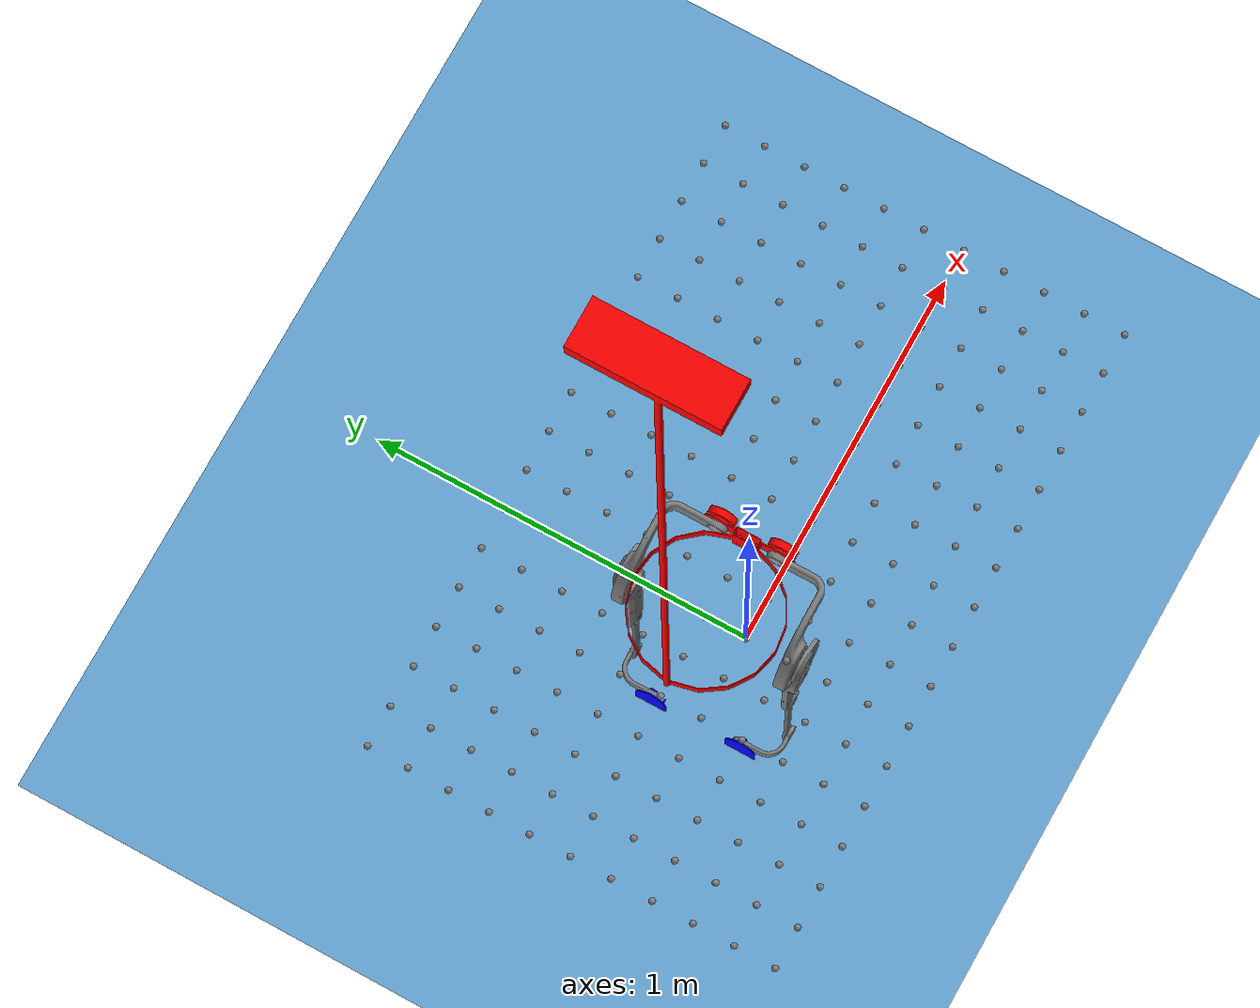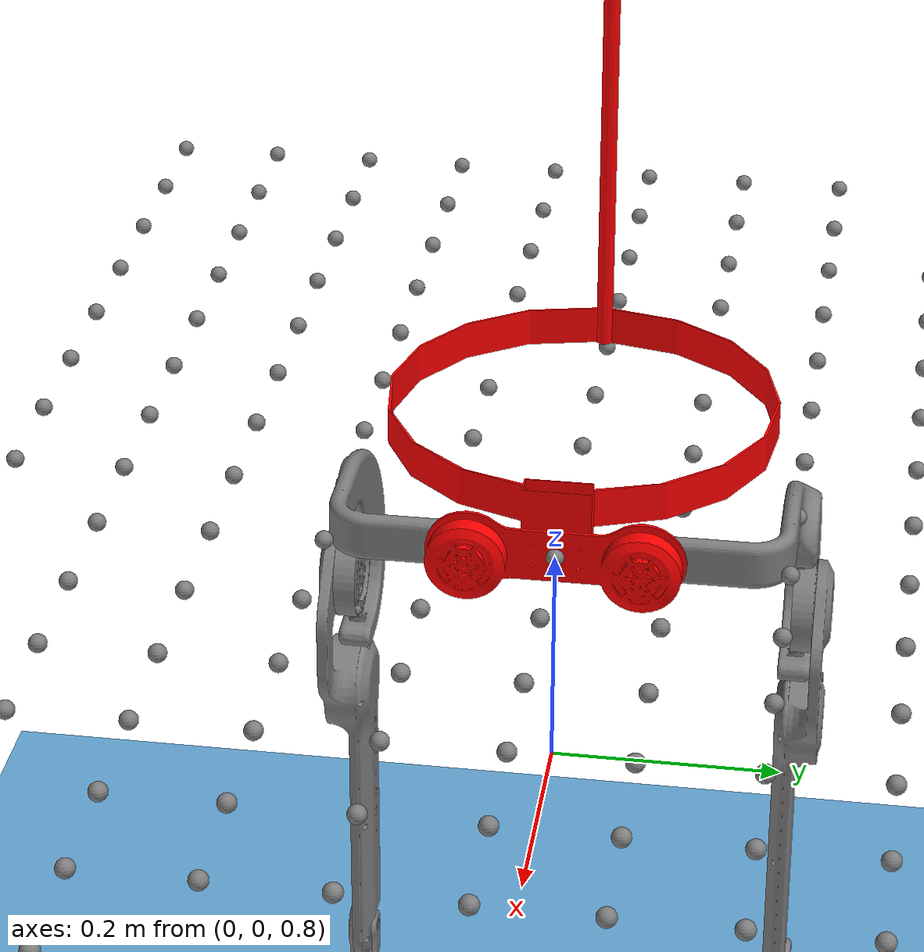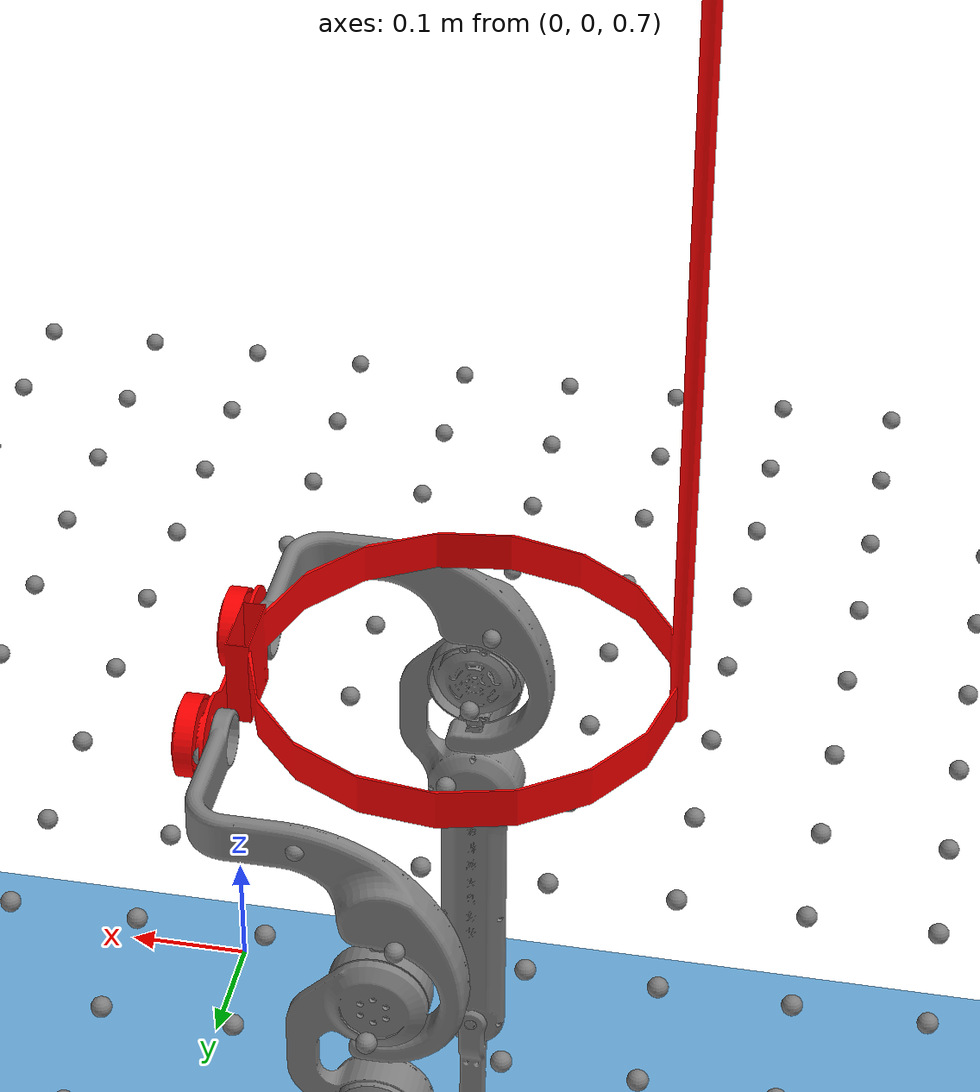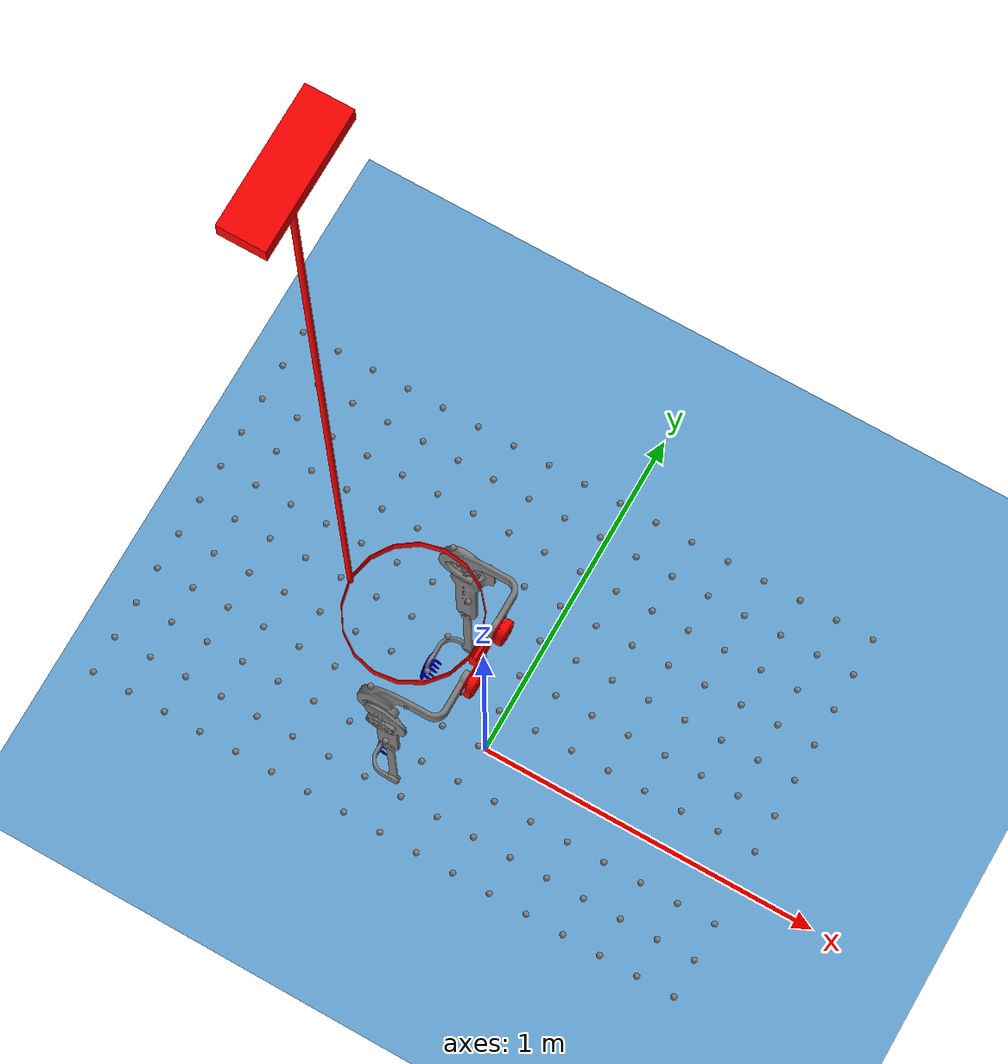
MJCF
<mujoco model="a2">

  <!-- ========== Compiler & Options ========== -->
  <compiler angle="radian" meshdir="../meshes"/>

  <option timestep="0.005" gravity="0 0 -9.81">
  </option>

  <default>

    <joint damping="0.1" armature="0.000"/>

    <default class="gemo_visual">  <!-- 只显示,不参与碰撞 -->
      <geom contype="0" conaffinity="0"/>
    </default>

    <default class="gemo_collision">  <!-- 只参与碰撞 -->
      <geom contype="0" conaffinity="1" group="3"/>
    </default>

  </default>

  <!-- ========== Assets (STL Meshes) ========== -->
  <asset>
    <mesh name="mesh_base"            file="base_link.STL"/>
    <mesh name="mesh_l_hip_roll"      file="left_hip_roll_link.STL"/>
    <mesh name="mesh_l_hip_yaw"       file="left_hip_yaw_link.STL"/>
    <mesh name="mesh_l_hip_pitch"     file="left_hip_pitch_link.STL"/>
    <mesh name="mesh_l_knee"          file="left_knee_link.STL"/>
    <mesh name="mesh_l_ankle_pitch"   file="left_ankle_pitch_link.STL"/>
    <mesh name="mesh_l_ankle_roll"    file="left_ankle_roll_link.STL"/>
    <mesh name="mesh_r_hip_roll"      file="right_hip_roll_link.STL"/>
    <mesh name="mesh_r_hip_yaw"       file="right_hip_yaw_link.STL"/>
    <mesh name="mesh_r_hip_pitch"     file="right_hip_pitch_link.STL"/>
    <mesh name="mesh_r_knee"          file="right_knee_link.STL"/>
    <mesh name="mesh_r_ankle_pitch"   file="right_ankle_pitch_link.STL"/>
    <mesh name="mesh_r_ankle_roll"    file="right_ankle_roll_link.STL"/>
  </asset>

  <asset>
      <texture name='texture_plane' type='2d' builtin='checker' rgb1='0.2745 0.5098 0.7059' rgb2='0.5294 0.8078 0.9804' width='128' height='128'/>
      <material name='material_plane' reflectance='0.0' texture='texture_plane' texrepeat='1 1' texuniform='true'/>
      <material name="gray" rgba="0.3 0.3 0.3 1"/>
      <material name="blue" rgba="0 0 1 1"/>
      <material name="red" rgba="1 0 0 1"/>
      <material name="green" rgba="0 1 0 1"/>
  </asset>

  <!-- ========== Worldbody ========== -->
  <worldbody>
    <geom name="floor" type="plane" conaffinity="2" size="100 100 .2" material="material_plane"/>
       <light directional="true" ambient=".3 .3 .3" pos="30 30 30" dir="0 -.5 -1"
                    diffuse=".5 .5 .5" specular=".5 .5 .5" />

    <body name="base_link" pos="0 0 1.0" euler="0 0 0">
      <freejoint name="base_free"/>
      <inertial pos="-0.14464 0 0.63562" mass="1.6082" fullinertia="1.6349 1.6777 0.06302 0 0.2309 0"/>
      <geom class="gemo_visual" type="mesh" mesh="mesh_base" rgba="1 0 0 1"/>
      <geom class="gemo_collision" type="box" size="0.2 0.15 0.75" pos="-0.2 0 0.75"/>

      <site name="ray_0_0" type="sphere" size="0.008" pos="-0.8 -0.5 0.0" zaxis="0 0 -1"/>
      <site name="ray_0_1" type="sphere" size="0.008" pos="-0.8 -0.4 0.0" zaxis="0 0 -1"/>
      <site name="ray_0_2" type="sphere" size="0.008" pos="-0.8 -0.3 0.0" zaxis="0 0 -1"/>
      <site name="ray_0_3" type="sphere" size="0.008" pos="-0.8 -0.2 0.0" zaxis="0 0 -1"/>
      <site name="ray_0_4" type="sphere" size="0.008" pos="-0.8 -0.1 0.0" zaxis="0 0 -1"/>
      <site name="ray_0_5" type="sphere" size="0.008" pos="-0.8 0.0 0.0" zaxis="0 0 -1"/>
      <site name="ray_0_6" type="sphere" size="0.008" pos="-0.8 0.1 0.0" zaxis="0 0 -1"/>
      <site name="ray_0_7" type="sphere" size="0.008" pos="-0.8 0.2 0.0" zaxis="0 0 -1"/>
      <site name="ray_0_8" type="sphere" size="0.008" pos="-0.8 0.3 0.0" zaxis="0 0 -1"/>
      <site name="ray_0_9" type="sphere" size="0.008" pos="-0.8 0.4 0.0" zaxis="0 0 -1"/>
      <site name="ray_0_10" type="sphere" size="0.008" pos="-0.8 0.5 0.0" zaxis="0 0 -1"/>
      <site name="ray_1_0" type="sphere" size="0.008" pos="-0.7 -0.5 0.0" zaxis="0 0 -1"/>
      <site name="ray_1_1" type="sphere" size="0.008" pos="-0.7 -0.4 0.0" zaxis="0 0 -1"/>
      <site name="ray_1_2" type="sphere" size="0.008" pos="-0.7 -0.3 0.0" zaxis="0 0 -1"/>
      <site name="ray_1_3" type="sphere" size="0.008" pos="-0.7 -0.2 0.0" zaxis="0 0 -1"/>
      <site name="ray_1_4" type="sphere" size="0.008" pos="-0.7 -0.1 0.0" zaxis="0 0 -1"/>
      <site name="ray_1_5" type="sphere" size="0.008" pos="-0.7 0.0 0.0" zaxis="0 0 -1"/>
      <site name="ray_1_6" type="sphere" size="0.008" pos="-0.7 0.1 0.0" zaxis="0 0 -1"/>
      <site name="ray_1_7" type="sphere" size="0.008" pos="-0.7 0.2 0.0" zaxis="0 0 -1"/>
      <site name="ray_1_8" type="sphere" size="0.008" pos="-0.7 0.3 0.0" zaxis="0 0 -1"/>
      <site name="ray_1_9" type="sphere" size="0.008" pos="-0.7 0.4 0.0" zaxis="0 0 -1"/>
      <site name="ray_1_10" type="sphere" size="0.008" pos="-0.7 0.5 0.0" zaxis="0 0 -1"/>
      <site name="ray_2_0" type="sphere" size="0.008" pos="-0.6 -0.5 0.0" zaxis="0 0 -1"/>
      <site name="ray_2_1" type="sphere" size="0.008" pos="-0.6 -0.4 0.0" zaxis="0 0 -1"/>
      <site name="ray_2_2" type="sphere" size="0.008" pos="-0.6 -0.3 0.0" zaxis="0 0 -1"/>
      <site name="ray_2_3" type="sphere" size="0.008" pos="-0.6 -0.2 0.0" zaxis="0 0 -1"/>
      <site name="ray_2_4" type="sphere" size="0.008" pos="-0.6 -0.1 0.0" zaxis="0 0 -1"/>
      <site name="ray_2_5" type="sphere" size="0.008" pos="-0.6 0.0 0.0" zaxis="0 0 -1"/>
      <site name="ray_2_6" type="sphere" size="0.008" pos="-0.6 0.1 0.0" zaxis="0 0 -1"/>
      <site name="ray_2_7" type="sphere" size="0.008" pos="-0.6 0.2 0.0" zaxis="0 0 -1"/>
      <site name="ray_2_8" type="sphere" size="0.008" pos="-0.6 0.3 0.0" zaxis="0 0 -1"/>
      <site name="ray_2_9" type="sphere" size="0.008" pos="-0.6 0.4 0.0" zaxis="0 0 -1"/>
      <site name="ray_2_10" type="sphere" size="0.008" pos="-0.6 0.5 0.0" zaxis="0 0 -1"/>
      <site name="ray_3_0" type="sphere" size="0.008" pos="-0.5 -0.5 0.0" zaxis="0 0 -1"/>
      <site name="ray_3_1" type="sphere" size="0.008" pos="-0.5 -0.4 0.0" zaxis="0 0 -1"/>
      <site name="ray_3_2" type="sphere" size="0.008" pos="-0.5 -0.3 0.0" zaxis="0 0 -1"/>
      <site name="ray_3_3" type="sphere" size="0.008" pos="-0.5 -0.2 0.0" zaxis="0 0 -1"/>
      <site name="ray_3_4" type="sphere" size="0.008" pos="-0.5 -0.1 0.0" zaxis="0 0 -1"/>
      <site name="ray_3_5" type="sphere" size="0.008" pos="-0.5 0.0 0.0" zaxis="0 0 -1"/>
      <site name="ray_3_6" type="sphere" size="0.008" pos="-0.5 0.1 0.0" zaxis="0 0 -1"/>
      <site name="ray_3_7" type="sphere" size="0.008" pos="-0.5 0.2 0.0" zaxis="0 0 -1"/>
      <site name="ray_3_8" type="sphere" size="0.008" pos="-0.5 0.3 0.0" zaxis="0 0 -1"/>
      <site name="ray_3_9" type="sphere" size="0.008" pos="-0.5 0.4 0.0" zaxis="0 0 -1"/>
      <site name="ray_3_10" type="sphere" size="0.008" pos="-0.5 0.5 0.0" zaxis="0 0 -1"/>
      <site name="ray_4_0" type="sphere" size="0.008" pos="-0.4 -0.5 0.0" zaxis="0 0 -1"/>
      <site name="ray_4_1" type="sphere" size="0.008" pos="-0.4 -0.4 0.0" zaxis="0 0 -1"/>
      <site name="ray_4_2" type="sphere" size="0.008" pos="-0.4 -0.3 0.0" zaxis="0 0 -1"/>
      <site name="ray_4_3" type="sphere" size="0.008" pos="-0.4 -0.2 0.0" zaxis="0 0 -1"/>
      <site name="ray_4_4" type="sphere" size="0.008" pos="-0.4 -0.1 0.0" zaxis="0 0 -1"/>
      <site name="ray_4_5" type="sphere" size="0.008" pos="-0.4 0.0 0.0" zaxis="0 0 -1"/>
      <site name="ray_4_6" type="sphere" size="0.008" pos="-0.4 0.1 0.0" zaxis="0 0 -1"/>
      <site name="ray_4_7" type="sphere" size="0.008" pos="-0.4 0.2 0.0" zaxis="0 0 -1"/>
      <site name="ray_4_8" type="sphere" size="0.008" pos="-0.4 0.3 0.0" zaxis="0 0 -1"/>
      <site name="ray_4_9" type="sphere" size="0.008" pos="-0.4 0.4 0.0" zaxis="0 0 -1"/>
      <site name="ray_4_10" type="sphere" size="0.008" pos="-0.4 0.5 0.0" zaxis="0 0 -1"/>
      <site name="ray_5_0" type="sphere" size="0.008" pos="-0.3 -0.5 0.0" zaxis="0 0 -1"/>
      <site name="ray_5_1" type="sphere" size="0.008" pos="-0.3 -0.4 0.0" zaxis="0 0 -1"/>
      <site name="ray_5_2" type="sphere" size="0.008" pos="-0.3 -0.3 0.0" zaxis="0 0 -1"/>
      <site name="ray_5_3" type="sphere" size="0.008" pos="-0.3 -0.2 0.0" zaxis="0 0 -1"/>
      <site name="ray_5_4" type="sphere" size="0.008" pos="-0.3 -0.1 0.0" zaxis="0 0 -1"/>
      <site name="ray_5_5" type="sphere" size="0.008" pos="-0.3 0.0 0.0" zaxis="0 0 -1"/>
      <site name="ray_5_6" type="sphere" size="0.008" pos="-0.3 0.1 0.0" zaxis="0 0 -1"/>
      <site name="ray_5_7" type="sphere" size="0.008" pos="-0.3 0.2 0.0" zaxis="0 0 -1"/>
      <site name="ray_5_8" type="sphere" size="0.008" pos="-0.3 0.3 0.0" zaxis="0 0 -1"/>
      <site name="ray_5_9" type="sphere" size="0.008" pos="-0.3 0.4 0.0" zaxis="0 0 -1"/>
      <site name="ray_5_10" type="sphere" size="0.008" pos="-0.3 0.5 0.0" zaxis="0 0 -1"/>
      <site name="ray_6_0" type="sphere" size="0.008" pos="-0.2 -0.5 0.0" zaxis="0 0 -1"/>
      <site name="ray_6_1" type="sphere" size="0.008" pos="-0.2 -0.4 0.0" zaxis="0 0 -1"/>
      <site name="ray_6_2" type="sphere" size="0.008" pos="-0.2 -0.3 0.0" zaxis="0 0 -1"/>
      <site name="ray_6_3" type="sphere" size="0.008" pos="-0.2 -0.2 0.0" zaxis="0 0 -1"/>
      <site name="ray_6_4" type="sphere" size="0.008" pos="-0.2 -0.1 0.0" zaxis="0 0 -1"/>
      <site name="ray_6_5" type="sphere" size="0.008" pos="-0.2 0.0 0.0" zaxis="0 0 -1"/>
      <site name="ray_6_6" type="sphere" size="0.008" pos="-0.2 0.1 0.0" zaxis="0 0 -1"/>
      <site name="ray_6_7" type="sphere" size="0.008" pos="-0.2 0.2 0.0" zaxis="0 0 -1"/>
      <site name="ray_6_8" type="sphere" size="0.008" pos="-0.2 0.3 0.0" zaxis="0 0 -1"/>
      <site name="ray_6_9" type="sphere" size="0.008" pos="-0.2 0.4 0.0" zaxis="0 0 -1"/>
      <site name="ray_6_10" type="sphere" size="0.008" pos="-0.2 0.5 0.0" zaxis="0 0 -1"/>
      <site name="ray_7_0" type="sphere" size="0.008" pos="-0.1 -0.5 0.0" zaxis="0 0 -1"/>
      <site name="ray_7_1" type="sphere" size="0.008" pos="-0.1 -0.4 0.0" zaxis="0 0 -1"/>
      <site name="ray_7_2" type="sphere" size="0.008" pos="-0.1 -0.3 0.0" zaxis="0 0 -1"/>
      <site name="ray_7_3" type="sphere" size="0.008" pos="-0.1 -0.2 0.0" zaxis="0 0 -1"/>
      <site name="ray_7_4" type="sphere" size="0.008" pos="-0.1 -0.1 0.0" zaxis="0 0 -1"/>
      <site name="ray_7_5" type="sphere" size="0.008" pos="-0.1 0.0 0.0" zaxis="0 0 -1"/>
      <site name="ray_7_6" type="sphere" size="0.008" pos="-0.1 0.1 0.0" zaxis="0 0 -1"/>
      <site name="ray_7_7" type="sphere" size="0.008" pos="-0.1 0.2 0.0" zaxis="0 0 -1"/>
      <site name="ray_7_8" type="sphere" size="0.008" pos="-0.1 0.3 0.0" zaxis="0 0 -1"/>
      <site name="ray_7_9" type="sphere" size="0.008" pos="-0.1 0.4 0.0" zaxis="0 0 -1"/>
      <site name="ray_7_10" type="sphere" size="0.008" pos="-0.1 0.5 0.0" zaxis="0 0 -1"/>
      <site name="ray_8_0" type="sphere" size="0.008" pos="0.0 -0.5 0.0" zaxis="0 0 -1"/>
      <site name="ray_8_1" type="sphere" size="0.008" pos="0.0 -0.4 0.0" zaxis="0 0 -1"/>
      <site name="ray_8_2" type="sphere" size="0.008" pos="0.0 -0.3 0.0" zaxis="0 0 -1"/>
      <site name="ray_8_3" type="sphere" size="0.008" pos="0.0 -0.2 0.0" zaxis="0 0 -1"/>
      <site name="ray_8_4" type="sphere" size="0.008" pos="0.0 -0.1 0.0" zaxis="0 0 -1"/>
      <site name="ray_8_5" type="sphere" size="0.008" pos="0.0 0.0 0.0" zaxis="0 0 -1"/>
      <site name="ray_8_6" type="sphere" size="0.008" pos="0.0 0.1 0.0" zaxis="0 0 -1"/>
      <site name="ray_8_7" type="sphere" size="0.008" pos="0.0 0.2 0.0" zaxis="0 0 -1"/>
      <site name="ray_8_8" type="sphere" size="0.008" pos="0.0 0.3 0.0" zaxis="0 0 -1"/>
      <site name="ray_8_9" type="sphere" size="0.008" pos="0.0 0.4 0.0" zaxis="0 0 -1"/>
      <site name="ray_8_10" type="sphere" size="0.008" pos="0.0 0.5 0.0" zaxis="0 0 -1"/>
      <site name="ray_9_0" type="sphere" size="0.008" pos="0.1 -0.5 0.0" zaxis="0 0 -1"/>
      <site name="ray_9_1" type="sphere" size="0.008" pos="0.1 -0.4 0.0" zaxis="0 0 -1"/>
      <site name="ray_9_2" type="sphere" size="0.008" pos="0.1 -0.3 0.0" zaxis="0 0 -1"/>
      <site name="ray_9_3" type="sphere" size="0.008" pos="0.1 -0.2 0.0" zaxis="0 0 -1"/>
      <site name="ray_9_4" type="sphere" size="0.008" pos="0.1 -0.1 0.0" zaxis="0 0 -1"/>
      <site name="ray_9_5" type="sphere" size="0.008" pos="0.1 0.0 0.0" zaxis="0 0 -1"/>
      <site name="ray_9_6" type="sphere" size="0.008" pos="0.1 0.1 0.0" zaxis="0 0 -1"/>
      <site name="ray_9_7" type="sphere" size="0.008" pos="0.1 0.2 0.0" zaxis="0 0 -1"/>
      <site name="ray_9_8" type="sphere" size="0.008" pos="0.1 0.3 0.0" zaxis="0 0 -1"/>
      <site name="ray_9_9" type="sphere" size="0.008" pos="0.1 0.4 0.0" zaxis="0 0 -1"/>
      <site name="ray_9_10" type="sphere" size="0.008" pos="0.1 0.5 0.0" zaxis="0 0 -1"/>
      <site name="ray_10_0" type="sphere" size="0.008" pos="0.2 -0.5 0.0" zaxis="0 0 -1"/>
      <site name="ray_10_1" type="sphere" size="0.008" pos="0.2 -0.4 0.0" zaxis="0 0 -1"/>
      <site name="ray_10_2" type="sphere" size="0.008" pos="0.2 -0.3 0.0" zaxis="0 0 -1"/>
      <site name="ray_10_3" type="sphere" size="0.008" pos="0.2 -0.2 0.0" zaxis="0 0 -1"/>
      <site name="ray_10_4" type="sphere" size="0.008" pos="0.2 -0.1 0.0" zaxis="0 0 -1"/>
      <site name="ray_10_5" type="sphere" size="0.008" pos="0.2 0.0 0.0" zaxis="0 0 -1"/>
      <site name="ray_10_6" type="sphere" size="0.008" pos="0.2 0.1 0.0" zaxis="0 0 -1"/>
      <site name="ray_10_7" type="sphere" size="0.008" pos="0.2 0.2 0.0" zaxis="0 0 -1"/>
      <site name="ray_10_8" type="sphere" size="0.008" pos="0.2 0.3 0.0" zaxis="0 0 -1"/>
      <site name="ray_10_9" type="sphere" size="0.008" pos="0.2 0.4 0.0" zaxis="0 0 -1"/>
      <site name="ray_10_10" type="sphere" size="0.008" pos="0.2 0.5 0.0" zaxis="0 0 -1"/>
      <site name="ray_11_0" type="sphere" size="0.008" pos="0.3 -0.5 0.0" zaxis="0 0 -1"/>
      <site name="ray_11_1" type="sphere" size="0.008" pos="0.3 -0.4 0.0" zaxis="0 0 -1"/>
      <site name="ray_11_2" type="sphere" size="0.008" pos="0.3 -0.3 0.0" zaxis="0 0 -1"/>
      <site name="ray_11_3" type="sphere" size="0.008" pos="0.3 -0.2 0.0" zaxis="0 0 -1"/>
      <site name="ray_11_4" type="sphere" size="0.008" pos="0.3 -0.1 0.0" zaxis="0 0 -1"/>
      <site name="ray_11_5" type="sphere" size="0.008" pos="0.3 0.0 0.0" zaxis="0 0 -1"/>
      <site name="ray_11_6" type="sphere" size="0.008" pos="0.3 0.1 0.0" zaxis="0 0 -1"/>
      <site name="ray_11_7" type="sphere" size="0.008" pos="0.3 0.2 0.0" zaxis="0 0 -1"/>
      <site name="ray_11_8" type="sphere" size="0.008" pos="0.3 0.3 0.0" zaxis="0 0 -1"/>
      <site name="ray_11_9" type="sphere" size="0.008" pos="0.3 0.4 0.0" zaxis="0 0 -1"/>
      <site name="ray_11_10" type="sphere" size="0.008" pos="0.3 0.5 0.0" zaxis="0 0 -1"/>
      <site name="ray_12_0" type="sphere" size="0.008" pos="0.4 -0.5 0.0" zaxis="0 0 -1"/>
      <site name="ray_12_1" type="sphere" size="0.008" pos="0.4 -0.4 0.0" zaxis="0 0 -1"/>
      <site name="ray_12_2" type="sphere" size="0.008" pos="0.4 -0.3 0.0" zaxis="0 0 -1"/>
      <site name="ray_12_3" type="sphere" size="0.008" pos="0.4 -0.2 0.0" zaxis="0 0 -1"/>
      <site name="ray_12_4" type="sphere" size="0.008" pos="0.4 -0.1 0.0" zaxis="0 0 -1"/>
      <site name="ray_12_5" type="sphere" size="0.008" pos="0.4 0.0 0.0" zaxis="0 0 -1"/>
      <site name="ray_12_6" type="sphere" size="0.008" pos="0.4 0.1 0.0" zaxis="0 0 -1"/>
      <site name="ray_12_7" type="sphere" size="0.008" pos="0.4 0.2 0.0" zaxis="0 0 -1"/>
      <site name="ray_12_8" type="sphere" size="0.008" pos="0.4 0.3 0.0" zaxis="0 0 -1"/>
      <site name="ray_12_9" type="sphere" size="0.008" pos="0.4 0.4 0.0" zaxis="0 0 -1"/>
      <site name="ray_12_10" type="sphere" size="0.008" pos="0.4 0.5 0.0" zaxis="0 0 -1"/>
      <site name="ray_13_0" type="sphere" size="0.008" pos="0.5 -0.5 0.0" zaxis="0 0 -1"/>
      <site name="ray_13_1" type="sphere" size="0.008" pos="0.5 -0.4 0.0" zaxis="0 0 -1"/>
      <site name="ray_13_2" type="sphere" size="0.008" pos="0.5 -0.3 0.0" zaxis="0 0 -1"/>
      <site name="ray_13_3" type="sphere" size="0.008" pos="0.5 -0.2 0.0" zaxis="0 0 -1"/>
      <site name="ray_13_4" type="sphere" size="0.008" pos="0.5 -0.1 0.0" zaxis="0 0 -1"/>
      <site name="ray_13_5" type="sphere" size="0.008" pos="0.5 0.0 0.0" zaxis="0 0 -1"/>
      <site name="ray_13_6" type="sphere" size="0.008" pos="0.5 0.1 0.0" zaxis="0 0 -1"/>
      <site name="ray_13_7" type="sphere" size="0.008" pos="0.5 0.2 0.0" zaxis="0 0 -1"/>
      <site name="ray_13_8" type="sphere" size="0.008" pos="0.5 0.3 0.0" zaxis="0 0 -1"/>
      <site name="ray_13_9" type="sphere" size="0.008" pos="0.5 0.4 0.0" zaxis="0 0 -1"/>
      <site name="ray_13_10" type="sphere" size="0.008" pos="0.5 0.5 0.0" zaxis="0 0 -1"/>
      <site name="ray_14_0" type="sphere" size="0.008" pos="0.6 -0.5 0.0" zaxis="0 0 -1"/>
      <site name="ray_14_1" type="sphere" size="0.008" pos="0.6 -0.4 0.0" zaxis="0 0 -1"/>
      <site name="ray_14_2" type="sphere" size="0.008" pos="0.6 -0.3 0.0" zaxis="0 0 -1"/>
      <site name="ray_14_3" type="sphere" size="0.008" pos="0.6 -0.2 0.0" zaxis="0 0 -1"/>
      <site name="ray_14_4" type="sphere" size="0.008" pos="0.6 -0.1 0.0" zaxis="0 0 -1"/>
      <site name="ray_14_5" type="sphere" size="0.008" pos="0.6 0.0 0.0" zaxis="0 0 -1"/>
      <site name="ray_14_6" type="sphere" size="0.008" pos="0.6 0.1 0.0" zaxis="0 0 -1"/>
      <site name="ray_14_7" type="sphere" size="0.008" pos="0.6 0.2 0.0" zaxis="0 0 -1"/>
      <site name="ray_14_8" type="sphere" size="0.008" pos="0.6 0.3 0.0" zaxis="0 0 -1"/>
      <site name="ray_14_9" type="sphere" size="0.008" pos="0.6 0.4 0.0" zaxis="0 0 -1"/>
      <site name="ray_14_10" type="sphere" size="0.008" pos="0.6 0.5 0.0" zaxis="0 0 -1"/>
      <site name="ray_15_0" type="sphere" size="0.008" pos="0.7 -0.5 0.0" zaxis="0 0 -1"/>
      <site name="ray_15_1" type="sphere" size="0.008" pos="0.7 -0.4 0.0" zaxis="0 0 -1"/>
      <site name="ray_15_2" type="sphere" size="0.008" pos="0.7 -0.3 0.0" zaxis="0 0 -1"/>
      <site name="ray_15_3" type="sphere" size="0.008" pos="0.7 -0.2 0.0" zaxis="0 0 -1"/>
      <site name="ray_15_4" type="sphere" size="0.008" pos="0.7 -0.1 0.0" zaxis="0 0 -1"/>
      <site name="ray_15_5" type="sphere" size="0.008" pos="0.7 0.0 0.0" zaxis="0 0 -1"/>
      <site name="ray_15_6" type="sphere" size="0.008" pos="0.7 0.1 0.0" zaxis="0 0 -1"/>
      <site name="ray_15_7" type="sphere" size="0.008" pos="0.7 0.2 0.0" zaxis="0 0 -1"/>
      <site name="ray_15_8" type="sphere" size="0.008" pos="0.7 0.3 0.0" zaxis="0 0 -1"/>
      <site name="ray_15_9" type="sphere" size="0.008" pos="0.7 0.4 0.0" zaxis="0 0 -1"/>
      <site name="ray_15_10" type="sphere" size="0.008" pos="0.7 0.5 0.0" zaxis="0 0 -1"/>
      <site name="ray_16_0" type="sphere" size="0.008" pos="0.8 -0.5 0.0" zaxis="0 0 -1"/>
      <site name="ray_16_1" type="sphere" size="0.008" pos="0.8 -0.4 0.0" zaxis="0 0 -1"/>
      <site name="ray_16_2" type="sphere" size="0.008" pos="0.8 -0.3 0.0" zaxis="0 0 -1"/>
      <site name="ray_16_3" type="sphere" size="0.008" pos="0.8 -0.2 0.0" zaxis="0 0 -1"/>
      <site name="ray_16_4" type="sphere" size="0.008" pos="0.8 -0.1 0.0" zaxis="0 0 -1"/>
      <site name="ray_16_5" type="sphere" size="0.008" pos="0.8 0.0 0.0" zaxis="0 0 -1"/>
      <site name="ray_16_6" type="sphere" size="0.008" pos="0.8 0.1 0.0" zaxis="0 0 -1"/>
      <site name="ray_16_7" type="sphere" size="0.008" pos="0.8 0.2 0.0" zaxis="0 0 -1"/>
      <site name="ray_16_8" type="sphere" size="0.008" pos="0.8 0.3 0.0" zaxis="0 0 -1"/>
      <site name="ray_16_9" type="sphere" size="0.008" pos="0.8 0.4 0.0" zaxis="0 0 -1"/>
      <site name="ray_16_10" type="sphere" size="0.008" pos="0.8 0.5 0.0" zaxis="0 0 -1"/>

      <body name="left_hip_roll_link" pos="-0.001 0.075 0" euler="0 0 0">
        <inertial pos="-0.11964 0.10244 -0.05598" mass="0.34283" fullinertia="0.00223 0.00379 0.00287 0.00091 -0.00132 0.00049"/>
        <joint name="left_hip_roll_joint" axis="1 0 0" range="-0.52 2.97"/>
        <geom class="gemo_visual" type="mesh" mesh="mesh_l_hip_roll"/>

        <body name="left_hip_yaw_link" pos="-0.166 0.128 -0.0835" euler="0 0 0">
          <inertial pos="-1E-05 0.00843 -0.04551" mass="0.46018"
                    fullinertia="0.00023 0.00035 0.00016 0 0 0"/>
          <joint name="left_hip_yaw_joint" axis="0 0 1" range="-2.76 2.76"/>
          <geom class="gemo_visual" type="mesh" mesh="mesh_l_hip_yaw"/>

          <body name="left_hip_pitch_link" pos="0 0.028 -0.0455" euler="0 0 0">
            <inertial pos="0.00472 -0.01824 -0.17562" mass="0.81624"
                      fullinertia="0.01192 0.01225 0.00052 -4E-05 -0.00047 -0.00068"/>
            <joint name="left_hip_pitch_joint" axis="0 1 0" range="-2.53 2.88"/>
            <geom class="gemo_visual" type="mesh" mesh="mesh_l_hip_pitch"/>

            <body name="left_knee_link" pos="0 -0.04325 -0.4" euler="0 0 0">
              <inertial pos="0 0.01314 -0.14741" mass="0.10574"
                        fullinertia="0.0018 0.0018 1E-05 0 0 -1E-05"/>
              <joint name="left_knee_joint" axis="0 1 0" range="-0.09 2.88"/>
              <geom class="gemo_visual" type="mesh" mesh="mesh_l_knee"/>

              <body name="left_ankle_pitch_link" pos="0 0.00825 -0.392" euler="0 0 0">
                <inertial pos="-0.04625 -0.01898 0" mass="0.04908"
                          fullinertia="7E-05 5E-05 0.00011 -4E-05 0 0"/>
                <joint name="left_ankle_pitch_joint" axis="0 1 0" range="-0.87 0.52"/>
                <geom class="gemo_visual" type="mesh" mesh="mesh_l_ankle_pitch"/>

                <body name="left_ankle_roll_link" pos="-0.063229 -0.0765 0" euler="0 0 0">
                  <inertial pos="0.04783 0 -0.08669" mass="0.21284"
                            fullinertia="0.00043 0.00147 0.00134 0 0.00031 0"/>
                  <joint name="left_ankle_roll_joint" axis="1 0 0" range="-0.26 0.26"/>
                  <geom class="gemo_visual" type="mesh" mesh="mesh_l_ankle_roll" rgba="0 0 1 1"/>

                  <body name="leg_lfoot_link" pos="0.11 0.0 -0.125" euler="0 0 1.5708">
                    <inertial pos="0 0 0" mass="0.0001"
                              fullinertia="0.000001 0.000001 0.000001 0 0 0"/>
                    <geom class="gemo_collision" type="box" size="0.06 0.1275 0.015" pos="0 0 0.025" rgba="0 1 0 1"/>
                  </body>
                </body>
              </body>
            </body>
          </body>
        </body>
      </body>

      <body name="right_hip_roll_link" pos="-0.001 -0.075 0" euler="0 0 0">
        <inertial pos="-0.11964 -0.10243 -0.05598" mass="0.34281" fullinertia="0.00223 0.00379 0.00287 -0.00091 -0.00132 -0.00049"/>
        <joint name="right_hip_roll_joint" axis="1 0 0" range="-2.97 0.52"/>
        <geom class="gemo_visual" type="mesh" mesh="mesh_r_hip_roll"/>

        <body name="right_hip_yaw_link" pos="-0.166 -0.128 -0.0835" euler="0 0 0">
          <inertial pos="-1E-05 -0.00843 -0.04551" mass="0.46018"
                    fullinertia="0.00023 0.00035 0.00016 0 0 0"/>
          <joint name="right_hip_yaw_joint" axis="0 0 1" range="-2.76 2.76"/>
          <geom class="gemo_visual" type="mesh" mesh="mesh_r_hip_yaw"/>

          <body name="right_hip_pitch_link" pos="0 -0.028 -0.0455" euler="0 0 0">
            <inertial pos="0.00472 0.01824 -0.17562" mass="0.81624"
                      fullinertia="0.01192 0.01225 0.00052 4E-05 -0.00047 0.00068"/>
            <joint name="right_hip_pitch_joint" axis="0 1 0" range="-2.53 2.88"/>
            <geom class="gemo_visual" type="mesh" mesh="mesh_r_hip_pitch"/>

            <body name="right_knee_link" pos="0 0.04325 -0.4" euler="0 0 0">
              <inertial pos="0 -0.01314 -0.14741" mass="0.10574"
                        fullinertia="0.0018 0.0018 1E-05 0 0 1E-05"/>
              <joint name="right_knee_joint" axis="0 1 0" range="-0.09 2.88"/>
              <geom class="gemo_visual" type="mesh" mesh="mesh_r_knee"/>

              <body name="right_ankle_pitch_link" pos="0 -0.00825 -0.392" euler="0 0 0">
                <inertial pos="-0.04625 0.01898 0" mass="0.04908"
                          fullinertia="7E-05 5E-05 0.00011 4E-05 0 0"/>
                <joint name="right_ankle_pitch_joint" axis="0 1 0" range="-0.87 0.52"/>
                <geom class="gemo_visual" type="mesh" mesh="mesh_r_ankle_pitch"/>

                <body name="right_ankle_roll_link" pos="-0.063229 0.0765 0" euler="0 0 0">
                  <inertial pos="0.04784 0 -0.08669" mass="0.21281"
                            fullinertia="0.00043 0.00147 0.00134 0 0.00031 0"/>
                  <joint name="right_ankle_roll_joint" axis="1 0 0" range="-0.26 2.6"/>
                  <geom class="gemo_visual" type="mesh" mesh="mesh_r_ankle_roll" rgba="0 0 1 1"/>

                  <body name="leg_rfoot_link" pos="0.11 0.0 -0.125" euler="0 0 1.5708">
                    <inertial pos="0 0 0" mass="0.0001"
                              fullinertia="0.000001 0.000001 0.000001 0 0 0"/>
                    <geom class="gemo_collision" type="box" size="0.06 0.1275 0.015" pos="0 0 0.025" rgba="0 1 0 1"/>
                  </body>
                </body>
              </body>
            </body>
          </body>
        </body>
      </body>

    </body><!-- /base_link -->
  </worldbody>

  <actuator>
    <!-- Left Leg Actuators -->
    <position name="act_left_hip_roll_joint"    joint="left_hip_roll_joint"    ctrlrange="-0.52 2.97"  kp="50.0" kv="0.3" />
    <position name="act_left_hip_yaw_joint"     joint="left_hip_yaw_joint"     ctrlrange="-2.76 2.76"  kp="50.0" kv="0.3" />
    <position name="act_left_hip_pitch_joint"   joint="left_hip_pitch_joint"   ctrlrange="-2.53 2.88"  kp="50.0" kv="0.3" />
    <position name="act_left_knee_joint"        joint="left_knee_joint"        ctrlrange="-0.09 2.88"  kp="50.0" kv="0.3" />
    <position name="act_left_ankle_pitch_joint" joint="left_ankle_pitch_joint" ctrlrange="-0.87 0.52"  kp="50.0" kv="0.3" />
    <position name="act_left_ankle_roll_joint"  joint="left_ankle_roll_joint"  ctrlrange="-0.26 0.26"  kp="50.0" kv="0.3" />

    <!-- Right Leg Actuators -->
    <position name="act_right_hip_roll_joint"    joint="right_hip_roll_joint"    ctrlrange="-2.97 0.52"  kp="50.0" kv="0.3" />
    <position name="act_right_hip_yaw_joint"     joint="right_hip_yaw_joint"     ctrlrange="-2.76 2.76"  kp="50.0" kv="0.3" />
    <position name="act_right_hip_pitch_joint"   joint="right_hip_pitch_joint"   ctrlrange="-2.53 2.88"  kp="50.0" kv="0.3" />
    <position name="act_right_knee_joint"        joint="right_knee_joint"        ctrlrange="-0.09 2.88"  kp="50.0" kv="0.3" />
    <position name="act_right_ankle_pitch_joint" joint="right_ankle_pitch_joint" ctrlrange="-0.87 0.52"  kp="50.0" kv="0.3" />
    <position name="act_right_ankle_roll_joint"  joint="right_ankle_roll_joint"  ctrlrange="-0.26 0.26"   kp="50.0" kv="0.3" />
  </actuator>

  <sensor>
    <actuatorfrc name="sen_left_hip_roll_joint_trq"    actuator="act_left_hip_roll_joint"/>
    <actuatorfrc name="sen_left_hip_yaw_joint_trq"     actuator="act_left_hip_yaw_joint"/>
    <actuatorfrc name="sen_left_hip_pitch_joint_trq"   actuator="act_left_hip_pitch_joint"/>
    <actuatorfrc name="sen_left_knee_joint_trq"        actuator="act_left_knee_joint"/>
    <actuatorfrc name="sen_left_ankle_pitch_joint_trq" actuator="act_left_ankle_pitch_joint"/>
    <actuatorfrc name="sen_left_ankle_roll_joint_trq"  actuator="act_left_ankle_roll_joint"/>

    <actuatorfrc name="sen_right_hip_roll_joint_trq"    actuator="act_right_hip_roll_joint"/>
    <actuatorfrc name="sen_right_hip_yaw_joint_trq"     actuator="act_right_hip_yaw_joint"/>
    <actuatorfrc name="sen_right_hip_pitch_joint_trq"   actuator="act_right_hip_pitch_joint"/>
    <actuatorfrc name="sen_right_knee_joint_trq"        actuator="act_right_knee_joint"/>
    <actuatorfrc name="sen_right_ankle_pitch_joint_trq" actuator="act_right_ankle_pitch_joint"/>
    <actuatorfrc name="sen_right_ankle_roll_joint_trq"  actuator="act_right_ankle_roll_joint"/>

    <rangefinder site="ray_0_0" cutoff="15"/>
    <rangefinder site="ray_0_1" cutoff="15"/>
    <rangefinder site="ray_0_2" cutoff="15"/>
    <rangefinder site="ray_0_3" cutoff="15"/>
    <rangefinder site="ray_0_4" cutoff="15"/>
    <rangefinder site="ray_0_5" cutoff="15"/>
    <rangefinder site="ray_0_6" cutoff="15"/>
    <rangefinder site="ray_0_7" cutoff="15"/>
    <rangefinder site="ray_0_8" cutoff="15"/>
    <rangefinder site="ray_0_9" cutoff="15"/>
    <rangefinder site="ray_0_10" cutoff="15"/>
    <rangefinder site="ray_1_0" cutoff="15"/>
    <rangefinder site="ray_1_1" cutoff="15"/>
    <rangefinder site="ray_1_2" cutoff="15"/>
    <rangefinder site="ray_1_3" cutoff="15"/>
    <rangefinder site="ray_1_4" cutoff="15"/>
    <rangefinder site="ray_1_5" cutoff="15"/>
    <rangefinder site="ray_1_6" cutoff="15"/>
    <rangefinder site="ray_1_7" cutoff="15"/>
    <rangefinder site="ray_1_8" cutoff="15"/>
    <rangefinder site="ray_1_9" cutoff="15"/>
    <rangefinder site="ray_1_10" cutoff="15"/>
    <rangefinder site="ray_2_0" cutoff="15"/>
    <rangefinder site="ray_2_1" cutoff="15"/>
    <rangefinder site="ray_2_2" cutoff="15"/>
    <rangefinder site="ray_2_3" cutoff="15"/>
    <rangefinder site="ray_2_4" cutoff="15"/>
    <rangefinder site="ray_2_5" cutoff="15"/>
    <rangefinder site="ray_2_6" cutoff="15"/>
    <rangefinder site="ray_2_7" cutoff="15"/>
    <rangefinder site="ray_2_8" cutoff="15"/>
    <rangefinder site="ray_2_9" cutoff="15"/>
    <rangefinder site="ray_2_10" cutoff="15"/>
    <rangefinder site="ray_3_0" cutoff="15"/>
    <rangefinder site="ray_3_1" cutoff="15"/>
    <rangefinder site="ray_3_2" cutoff="15"/>
    <rangefinder site="ray_3_3" cutoff="15"/>
    <rangefinder site="ray_3_4" cutoff="15"/>
    <rangefinder site="ray_3_5" cutoff="15"/>
    <rangefinder site="ray_3_6" cutoff="15"/>
    <rangefinder site="ray_3_7" cutoff="15"/>
    <rangefinder site="ray_3_8" cutoff="15"/>
    <rangefinder site="ray_3_9" cutoff="15"/>
    <rangefinder site="ray_3_10" cutoff="15"/>
    <rangefinder site="ray_4_0" cutoff="15"/>
    <rangefinder site="ray_4_1" cutoff="15"/>
    <rangefinder site="ray_4_2" cutoff="15"/>
    <rangefinder site="ray_4_3" cutoff="15"/>
    <rangefinder site="ray_4_4" cutoff="15"/>
    <rangefinder site="ray_4_5" cutoff="15"/>
    <rangefinder site="ray_4_6" cutoff="15"/>
    <rangefinder site="ray_4_7" cutoff="15"/>
    <rangefinder site="ray_4_8" cutoff="15"/>
    <rangefinder site="ray_4_9" cutoff="15"/>
    <rangefinder site="ray_4_10" cutoff="15"/>
    <rangefinder site="ray_5_0" cutoff="15"/>
    <rangefinder site="ray_5_1" cutoff="15"/>
    <rangefinder site="ray_5_2" cutoff="15"/>
    <rangefinder site="ray_5_3" cutoff="15"/>
    <rangefinder site="ray_5_4" cutoff="15"/>
    <rangefinder site="ray_5_5" cutoff="15"/>
    <rangefinder site="ray_5_6" cutoff="15"/>
    <rangefinder site="ray_5_7" cutoff="15"/>
    <rangefinder site="ray_5_8" cutoff="15"/>
    <rangefinder site="ray_5_9" cutoff="15"/>
    <rangefinder site="ray_5_10" cutoff="15"/>
    <rangefinder site="ray_6_0" cutoff="15"/>
    <rangefinder site="ray_6_1" cutoff="15"/>
    <rangefinder site="ray_6_2" cutoff="15"/>
    <rangefinder site="ray_6_3" cutoff="15"/>
    <rangefinder site="ray_6_4" cutoff="15"/>
    <rangefinder site="ray_6_5" cutoff="15"/>
    <rangefinder site="ray_6_6" cutoff="15"/>
    <rangefinder site="ray_6_7" cutoff="15"/>
    <rangefinder site="ray_6_8" cutoff="15"/>
    <rangefinder site="ray_6_9" cutoff="15"/>
    <rangefinder site="ray_6_10" cutoff="15"/>
    <rangefinder site="ray_7_0" cutoff="15"/>
    <rangefinder site="ray_7_1" cutoff="15"/>
    <rangefinder site="ray_7_2" cutoff="15"/>
    <rangefinder site="ray_7_3" cutoff="15"/>
    <rangefinder site="ray_7_4" cutoff="15"/>
    <rangefinder site="ray_7_5" cutoff="15"/>
    <rangefinder site="ray_7_6" cutoff="15"/>
    <rangefinder site="ray_7_7" cutoff="15"/>
    <rangefinder site="ray_7_8" cutoff="15"/>
    <rangefinder site="ray_7_9" cutoff="15"/>
    <rangefinder site="ray_7_10" cutoff="15"/>
    <rangefinder site="ray_8_0" cutoff="15"/>
    <rangefinder site="ray_8_1" cutoff="15"/>
    <rangefinder site="ray_8_2" cutoff="15"/>
    <rangefinder site="ray_8_3" cutoff="15"/>
    <rangefinder site="ray_8_4" cutoff="15"/>
    <rangefinder site="ray_8_5" cutoff="15"/>
    <rangefinder site="ray_8_6" cutoff="15"/>
    <rangefinder site="ray_8_7" cutoff="15"/>
    <rangefinder site="ray_8_8" cutoff="15"/>
    <rangefinder site="ray_8_9" cutoff="15"/>
    <rangefinder site="ray_8_10" cutoff="15"/>
    <rangefinder site="ray_9_0" cutoff="15"/>
    <rangefinder site="ray_9_1" cutoff="15"/>
    <rangefinder site="ray_9_2" cutoff="15"/>
    <rangefinder site="ray_9_3" cutoff="15"/>
    <rangefinder site="ray_9_4" cutoff="15"/>
    <rangefinder site="ray_9_5" cutoff="15"/>
    <rangefinder site="ray_9_6" cutoff="15"/>
    <rangefinder site="ray_9_7" cutoff="15"/>
    <rangefinder site="ray_9_8" cutoff="15"/>
    <rangefinder site="ray_9_9" cutoff="15"/>
    <rangefinder site="ray_9_10" cutoff="15"/>
    <rangefinder site="ray_10_0" cutoff="15"/>
    <rangefinder site="ray_10_1" cutoff="15"/>
    <rangefinder site="ray_10_2" cutoff="15"/>
    <rangefinder site="ray_10_3" cutoff="15"/>
    <rangefinder site="ray_10_4" cutoff="15"/>
    <rangefinder site="ray_10_5" cutoff="15"/>
    <rangefinder site="ray_10_6" cutoff="15"/>
    <rangefinder site="ray_10_7" cutoff="15"/>
    <rangefinder site="ray_10_8" cutoff="15"/>
    <rangefinder site="ray_10_9" cutoff="15"/>
    <rangefinder site="ray_10_10" cutoff="15"/>
    <rangefinder site="ray_11_0" cutoff="15"/>
    <rangefinder site="ray_11_1" cutoff="15"/>
    <rangefinder site="ray_11_2" cutoff="15"/>
    <rangefinder site="ray_11_3" cutoff="15"/>
    <rangefinder site="ray_11_4" cutoff="15"/>
    <rangefinder site="ray_11_5" cutoff="15"/>
    <rangefinder site="ray_11_6" cutoff="15"/>
    <rangefinder site="ray_11_7" cutoff="15"/>
    <rangefinder site="ray_11_8" cutoff="15"/>
    <rangefinder site="ray_11_9" cutoff="15"/>
    <rangefinder site="ray_11_10" cutoff="15"/>
    <rangefinder site="ray_12_0" cutoff="15"/>
    <rangefinder site="ray_12_1" cutoff="15"/>
    <rangefinder site="ray_12_2" cutoff="15"/>
    <rangefinder site="ray_12_3" cutoff="15"/>
    <rangefinder site="ray_12_4" cutoff="15"/>
    <rangefinder site="ray_12_5" cutoff="15"/>
    <rangefinder site="ray_12_6" cutoff="15"/>
    <rangefinder site="ray_12_7" cutoff="15"/>
    <rangefinder site="ray_12_8" cutoff="15"/>
    <rangefinder site="ray_12_9" cutoff="15"/>
    <rangefinder site="ray_12_10" cutoff="15"/>
    <rangefinder site="ray_13_0" cutoff="15"/>
    <rangefinder site="ray_13_1" cutoff="15"/>
    <rangefinder site="ray_13_2" cutoff="15"/>
    <rangefinder site="ray_13_3" cutoff="15"/>
    <rangefinder site="ray_13_4" cutoff="15"/>
    <rangefinder site="ray_13_5" cutoff="15"/>
    <rangefinder site="ray_13_6" cutoff="15"/>
    <rangefinder site="ray_13_7" cutoff="15"/>
    <rangefinder site="ray_13_8" cutoff="15"/>
    <rangefinder site="ray_13_9" cutoff="15"/>
    <rangefinder site="ray_13_10" cutoff="15"/>
    <rangefinder site="ray_14_0" cutoff="15"/>
    <rangefinder site="ray_14_1" cutoff="15"/>
    <rangefinder site="ray_14_2" cutoff="15"/>
    <rangefinder site="ray_14_3" cutoff="15"/>
    <rangefinder site="ray_14_4" cutoff="15"/>
    <rangefinder site="ray_14_5" cutoff="15"/>
    <rangefinder site="ray_14_6" cutoff="15"/>
    <rangefinder site="ray_14_7" cutoff="15"/>
    <rangefinder site="ray_14_8" cutoff="15"/>
    <rangefinder site="ray_14_9" cutoff="15"/>
    <rangefinder site="ray_14_10" cutoff="15"/>
    <rangefinder site="ray_15_0" cutoff="15"/>
    <rangefinder site="ray_15_1" cutoff="15"/>
    <rangefinder site="ray_15_2" cutoff="15"/>
    <rangefinder site="ray_15_3" cutoff="15"/>
    <rangefinder site="ray_15_4" cutoff="15"/>
    <rangefinder site="ray_15_5" cutoff="15"/>
    <rangefinder site="ray_15_6" cutoff="15"/>
    <rangefinder site="ray_15_7" cutoff="15"/>
    <rangefinder site="ray_15_8" cutoff="15"/>
    <rangefinder site="ray_15_9" cutoff="15"/>
    <rangefinder site="ray_15_10" cutoff="15"/>
    <rangefinder site="ray_16_0" cutoff="15"/>
    <rangefinder site="ray_16_1" cutoff="15"/>
    <rangefinder site="ray_16_2" cutoff="15"/>
    <rangefinder site="ray_16_3" cutoff="15"/>
    <rangefinder site="ray_16_4" cutoff="15"/>
    <rangefinder site="ray_16_5" cutoff="15"/>
    <rangefinder site="ray_16_6" cutoff="15"/>
    <rangefinder site="ray_16_7" cutoff="15"/>
    <rangefinder site="ray_16_8" cutoff="15"/>
    <rangefinder site="ray_16_9" cutoff="15"/>
    <rangefinder site="ray_16_10" cutoff="15"/>

  </sensor>
</mujoco>
